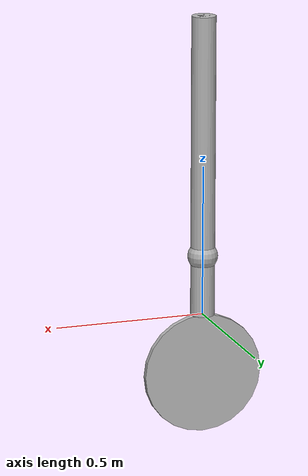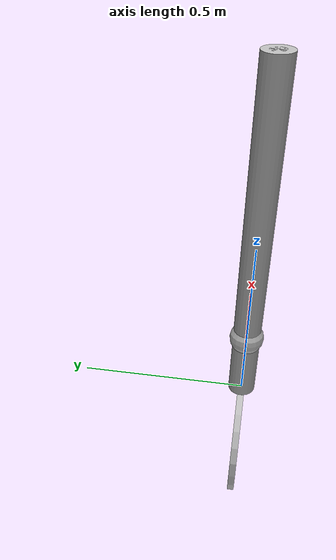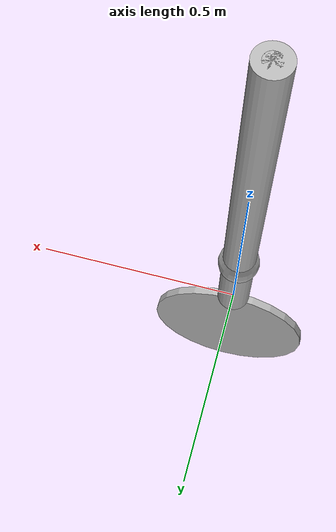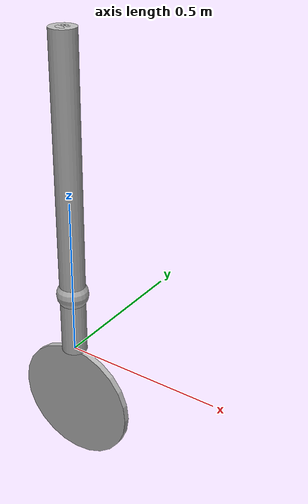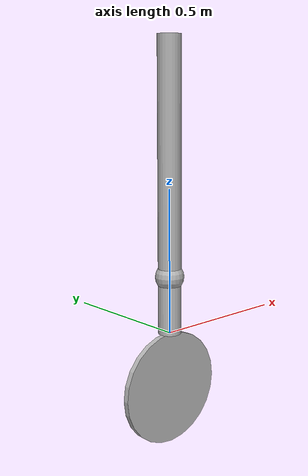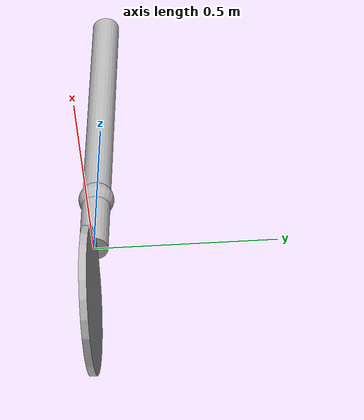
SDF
<?xml version='1.0' ?>

<!-- THIS FILE IS GENERATED FROM acrobot.rsdf -->

<sdf version='1.6'>
  <model name='Acrobot'>

    <link name='wheel'>
      <pose>0 0 -0.2 0 0 0</pose>
      <inertial>
        <pose>0 0 0.2 0 0 0</pose>
        <mass>0.2</mass>
        <inertia>
          <ixx>0.002006666666666667</ixx>
          <iyy>0.004000000000000001</iyy>
          <izz>0.002006666666666667</izz>
          <ixy>0</ixy><ixz>0</ixz><iyz>0</iyz>
        </inertia>
      </inertial>

      <visual name='vis_wheel'>
        <pose>0 0 0 1.570795 0 0</pose>
        <geometry>
          <cylinder>
            <radius>0.2</radius>
            <length>0.02</length>
          </cylinder>
        </geometry>
      </visual>
      <collision name='col_wheel'>
        <pose>0 0 0 1.570795 0 0</pose>
        <geometry>
          <cylinder>
            <radius>0.2</radius>
            <length>0.02</length>
          </cylinder>
        </geometry>
      </collision>
    </link>

    <link name='link1'>
      <pose>0 0 0 0 0 0</pose>
      <inertial>
        <pose>0 0 0.5 0 0 0</pose>
        <mass>0.1</mass>
        <inertia>
          <ixx>0.008333333333333333</ixx>
          <iyy>0.008333333333333333</iyy>
          <izz>1.0e-20</izz>
          <ixy>0</ixy><ixz>0</ixz><iyz>0</iyz>
        </inertia>
      </inertial>
      <visual name='link1_vis'>
        <pose>0 0 0.5 0 0 0</pose>
        <geometry>
          <cylinder>
            <radius>0.04</radius>
            <length>1.0</length>
          </cylinder>
        </geometry>
      </visual>
    </link>

    <link name='link2'>
      <pose>0 0 1.0 0 0 0</pose>
      <inertial>
        <pose>0 0 -0.4 0 0 0</pose>
        <mass>0.08</mass>
        <inertia>
          <ixx>0.004266666666666667</ixx>
          <iyy>0.004266666666666667</iyy>
          <izz>1.0e-20</izz>
          <ixy>0</ixy><ixz>0</ixz><iyz>0</iyz>
        </inertia>
      </inertial>
      <visual name='link2_vis'>
        <pose>0 0 -0.4 0 0 0</pose>
        <geometry>
          <cylinder>
            <radius>0.02</radius>
            <length>0.8</length>
          </cylinder>
        </geometry>
      </visual>
    </link>

    <link name='load'>
      <pose>0 0 0.19999999999999996 0 0 0</pose>
      <inertial>
        <mass>0.5</mass>
        <inertia>
          <ixx>1.0e-20</ixx><iyy>1.0e-20</iyy><izz>1.0e-20</izz>
          <ixy>0</ixy><ixz>0</ixz><iyz>0</iyz>
        </inertia>
      </inertial>
      <visual name='load_vis'>
        <pose>0 0 0 0 0 0</pose>
        <geometry>
          <sphere>
            <radius>0.05</radius>
          </sphere>
        </geometry>
      </visual>
    </link>

    <joint name='theta' type='revolute'>
      <parent>world</parent>
      <child>wheel</child>
      <pose>0 0 0 0 0 0</pose>
      <axis>
        <xyz>1.0 0 0</xyz>
        <limit>
          <effort>0.0</effort>
        </limit>
      </axis>
    </joint>

    <joint name='phi' type='revolute'>
      <parent>link1</parent>
      <child>link2</child>
      <pose>0 0 0 0 0 0</pose>
      <axis>
        <xyz>1.0 0 0</xyz>
      </axis>
    </joint>

    <joint name='load_attach' type='fixed'>
      <parent>link2</parent>
      <child>load</child>
      <pose>0 0 0 0 0 0</pose>
    </joint>

    <joint name='wheel_attach' type='fixed'>
      <parent>wheel</parent>
      <child>link1</child>
      <pose>0 0 0 0 0 0</pose>
    </joint>

  </model>
</sdf>
